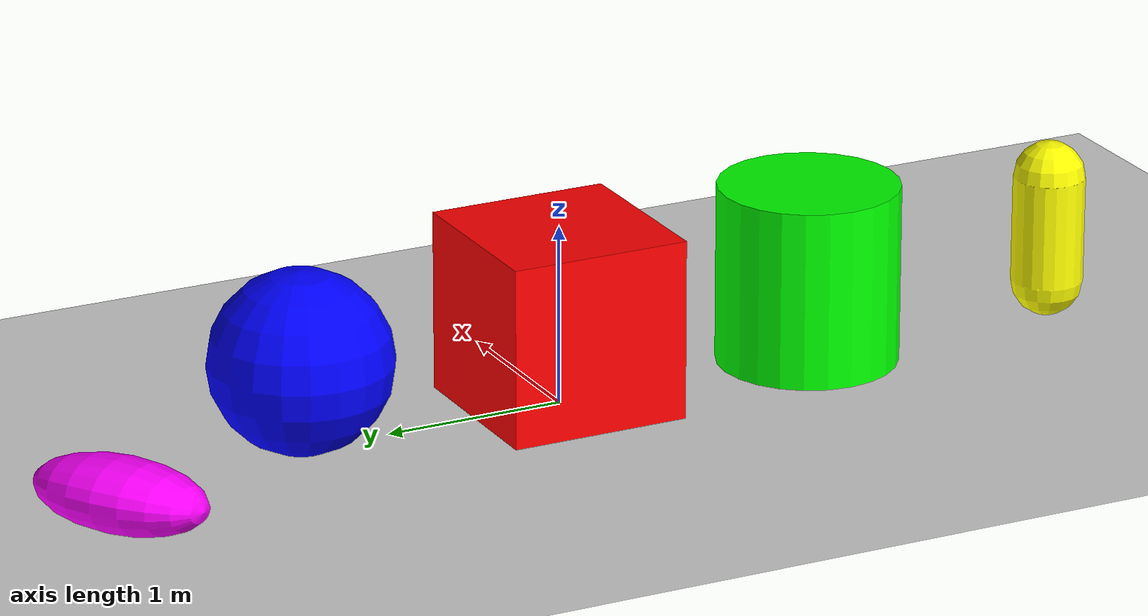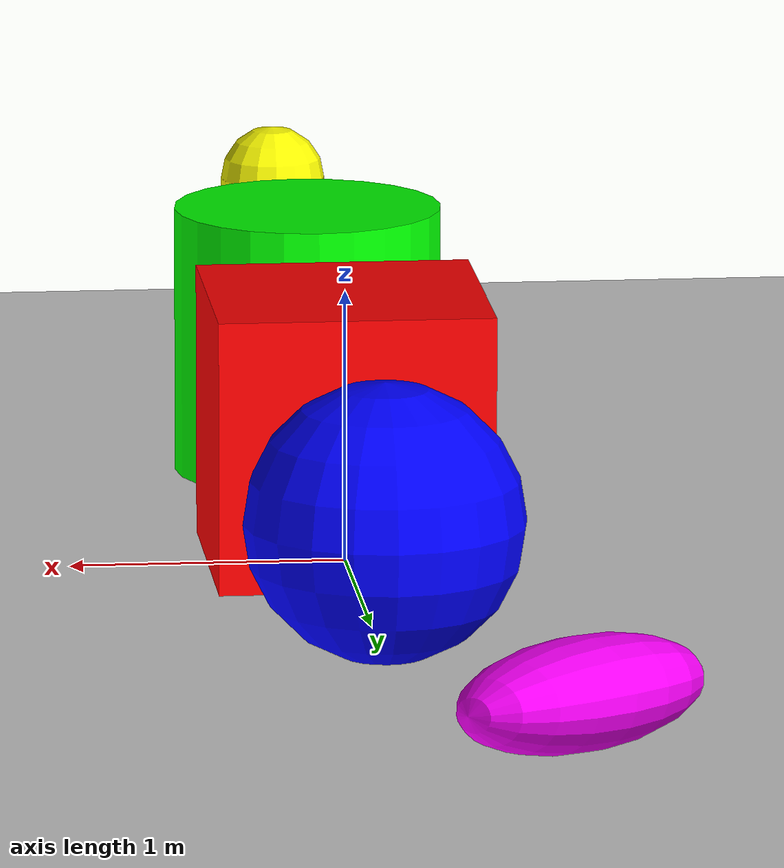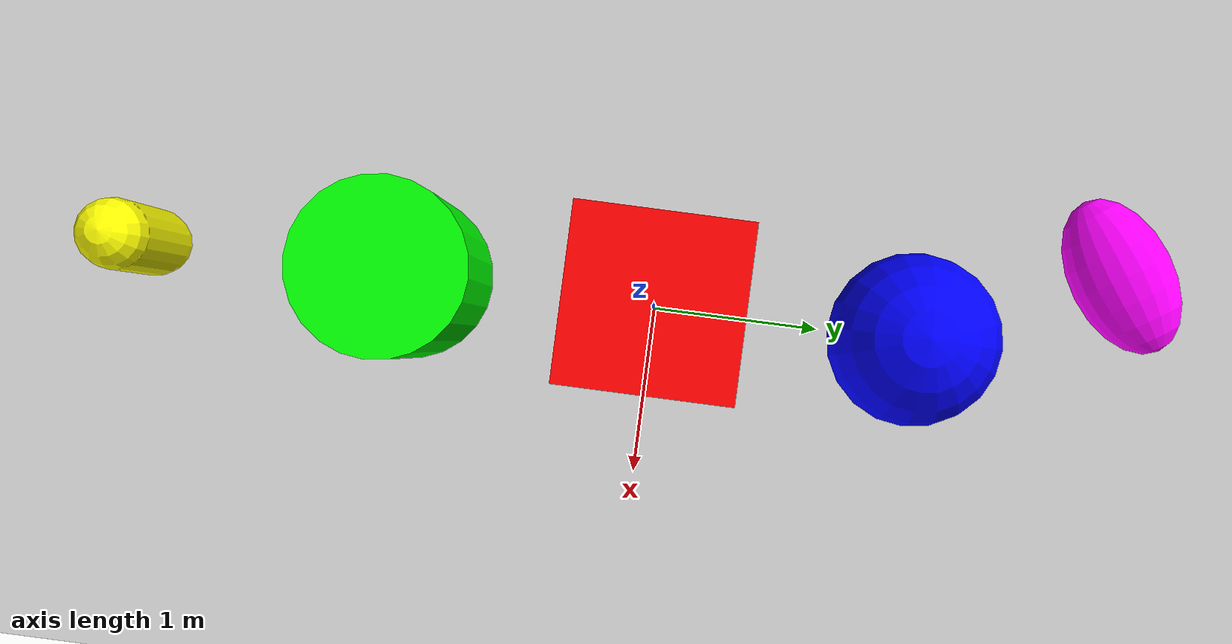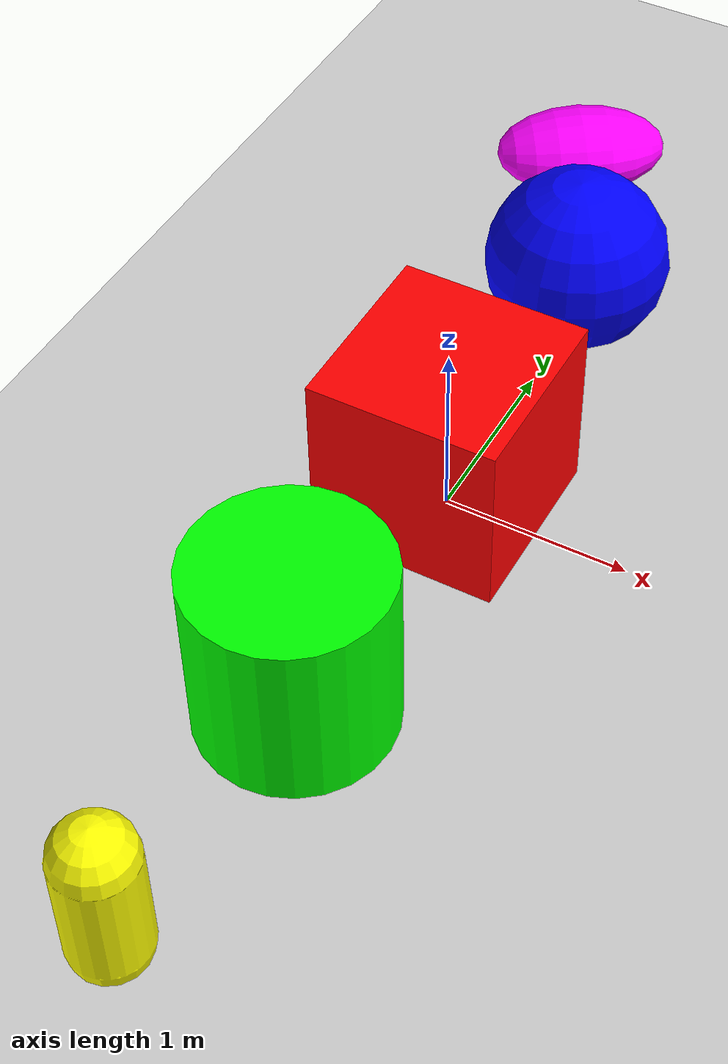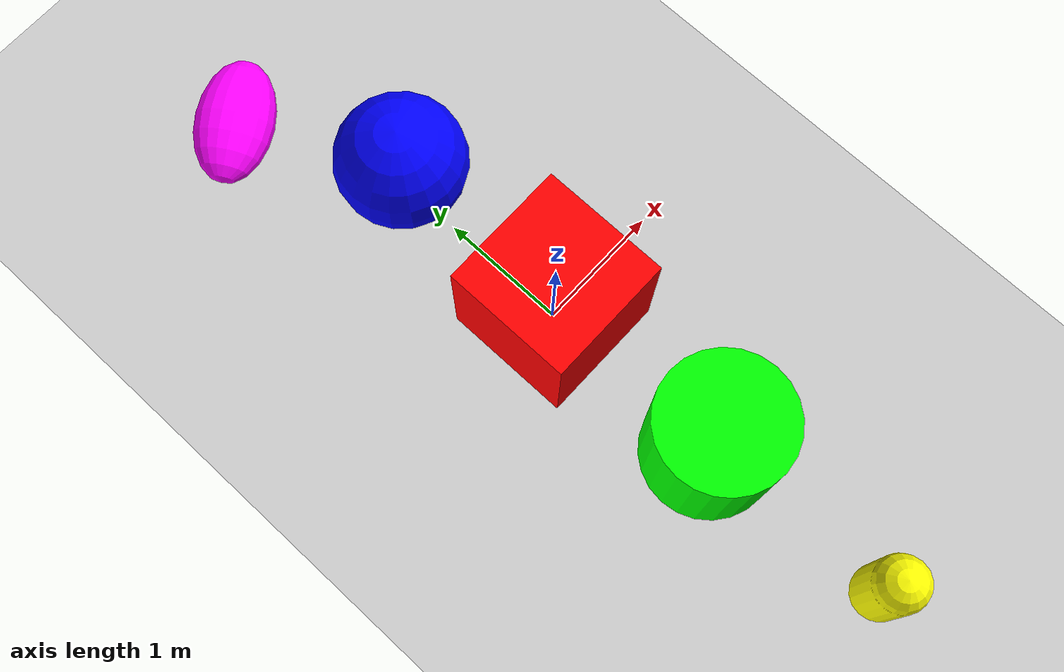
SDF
<sdf version='1.10'>
  <world name='shapes'>
    <scene>
      <ambient>1 1 1 1</ambient>
      <background>0.800000012 0.800000012 0.800000012 1</background>
      <shadows>true</shadows>
    </scene>
    <gravity>0 0 -9.8000000000000007</gravity>
    <magnetic_field>5.5644999999999998e-06 2.2875799999999999e-05 -4.2388400000000002e-05</magnetic_field>
    <atmosphere type='adiabatic'/>
    <physics type='ode'>
      <max_step_size>0.001</max_step_size>
      <real_time_factor>1</real_time_factor>
      <real_time_update_rate>1000</real_time_update_rate>
    </physics>
    <model name='ground_plane'>
      <static>true</static>
      <link name='link'>
        <collision name='collision'>
          <geometry>
            <plane>
              <normal>0 0 1</normal>
              <size>100 100</size>
            </plane>
          </geometry>
          <surface>
            <friction>
              <ode/>
            </friction>
            <bounce/>
            <contact/>
          </surface>
        </collision>
        <visual name='visual'>
          <geometry>
            <plane>
              <normal>0 0 1</normal>
              <size>100 100</size>
            </plane>
          </geometry>
          <material>
            <ambient>0.800000012 0.800000012 0.800000012 1</ambient>
            <diffuse>0.800000012 0.800000012 0.800000012 1</diffuse>
            <specular>0.800000012 0.800000012 0.800000012 1</specular>
          </material>
        </visual>
        <pose>0 0 0 0 0 0</pose>
        <inertial>
          <pose>0 0 0 0 0 0</pose>
          <mass>1</mass>
          <inertia>
            <ixx>1</ixx>
            <ixy>0</ixy>
            <ixz>0</ixz>
            <iyy>1</iyy>
            <iyz>0</iyz>
            <izz>1</izz>
          </inertia>
        </inertial>
        <enable_wind>false</enable_wind>
      </link>
      <pose>0 0 0 0 0 0</pose>
      <self_collide>false</self_collide>
    </model>
    <model name='box'>
      <pose>-8.9277939523812131e-22 -7.9047571251935682e-22 0.49999999990199806 6.2287739151293738e-22 9.3279666454713669e-22 -3.6315533669320137e-22</pose>
      <link name='box_link'>
        <inertial>
          <inertia>
            <ixx>0.16666</ixx>
            <ixy>0</ixy>
            <ixz>0</ixz>
            <iyy>0.16666</iyy>
            <iyz>0</iyz>
            <izz>0.16666</izz>
          </inertia>
          <mass>1</mass>
          <pose>0 0 0 0 0 0</pose>
        </inertial>
        <collision name='box_collision'>
          <geometry>
            <box>
              <size>1 1 1</size>
            </box>
          </geometry>
          <surface>
            <friction>
              <ode/>
            </friction>
            <bounce/>
            <contact/>
          </surface>
        </collision>
        <visual name='box_visual'>
          <geometry>
            <box>
              <size>1 1 1</size>
            </box>
          </geometry>
          <material>
            <ambient>1 0 0 1</ambient>
            <diffuse>1 0 0 1</diffuse>
            <specular>1 0 0 1</specular>
          </material>
        </visual>
        <pose>0 0 0 0 0 0</pose>
        <enable_wind>false</enable_wind>
      </link>
      <static>false</static>
      <self_collide>false</self_collide>
    </model>
    <model name='cylinder'>
      <pose>1.1906514689974719e-19 -1.5 0.49999942638036005 -2.0687241871693323e-19 1.508914796687197e-19 2.5459170572970044e-20</pose>
      <link name='cylinder_link'>
        <inertial>
          <inertia>
            <ixx>0.14580000000000001</ixx>
            <ixy>0</ixy>
            <ixz>0</ixz>
            <iyy>0.14580000000000001</iyy>
            <iyz>0</iyz>
            <izz>0.125</izz>
          </inertia>
          <mass>1</mass>
          <pose>0 0 0 0 0 0</pose>
        </inertial>
        <collision name='cylinder_collision'>
          <geometry>
            <cylinder>
              <radius>0.5</radius>
              <length>1</length>
            </cylinder>
          </geometry>
          <surface>
            <friction>
              <ode/>
            </friction>
            <bounce/>
            <contact/>
          </surface>
        </collision>
        <visual name='cylinder_visual'>
          <geometry>
            <cylinder>
              <radius>0.5</radius>
              <length>1</length>
            </cylinder>
          </geometry>
          <material>
            <ambient>0 1 0 1</ambient>
            <diffuse>0 1 0 1</diffuse>
            <specular>0 1 0 1</specular>
          </material>
        </visual>
        <pose>0 0 0 0 0 0</pose>
        <enable_wind>false</enable_wind>
      </link>
      <static>false</static>
      <self_collide>false</self_collide>
    </model>
    <model name='sphere'>
      <pose>0 1.5 0.499999999902001 0 0 0</pose>
      <link name='sphere_link'>
        <inertial>
          <inertia>
            <ixx>0.10000000000000001</ixx>
            <ixy>0</ixy>
            <ixz>0</ixz>
            <iyy>0.10000000000000001</iyy>
            <iyz>0</iyz>
            <izz>0.10000000000000001</izz>
          </inertia>
          <mass>1</mass>
          <pose>0 0 0 0 0 0</pose>
        </inertial>
        <collision name='sphere_collision'>
          <geometry>
            <sphere>
              <radius>0.5</radius>
            </sphere>
          </geometry>
          <surface>
            <friction>
              <ode/>
            </friction>
            <bounce/>
            <contact/>
          </surface>
        </collision>
        <visual name='sphere_visual'>
          <geometry>
            <sphere>
              <radius>0.5</radius>
            </sphere>
          </geometry>
          <material>
            <ambient>0 0 1 1</ambient>
            <diffuse>0 0 1 1</diffuse>
            <specular>0 0 1 1</specular>
          </material>
        </visual>
        <pose>0 0 0 0 0 0</pose>
        <enable_wind>false</enable_wind>
      </link>
      <static>false</static>
      <self_collide>false</self_collide>
    </model>
    <model name='capsule'>
      <pose>0 -3 0.499999999902001 0 0 0</pose>
      <link name='capsule_link'>
        <inertial>
          <inertia>
            <ixx>0.074153999999999998</ixx>
            <ixy>0</ixy>
            <ixz>0</ixz>
            <iyy>0.074153999999999998</iyy>
            <iyz>0</iyz>
            <izz>0.018769000000000001</izz>
          </inertia>
          <mass>1</mass>
          <pose>0 0 0 0 0 0</pose>
        </inertial>
        <collision name='capsule_collision'>
          <geometry>
            <capsule>
              <radius>0.20000000000000001</radius>
              <length>0.59999999999999998</length>
            </capsule>
          </geometry>
          <surface>
            <friction>
              <ode/>
            </friction>
            <bounce/>
            <contact/>
          </surface>
        </collision>
        <visual name='capsule_visual'>
          <geometry>
            <capsule>
              <radius>0.20000000000000001</radius>
              <length>0.59999999999999998</length>
            </capsule>
          </geometry>
          <material>
            <ambient>1 1 0 1</ambient>
            <diffuse>1 1 0 1</diffuse>
            <specular>1 1 0 1</specular>
          </material>
        </visual>
        <pose>0 0 0 0 0 0</pose>
        <enable_wind>false</enable_wind>
      </link>
      <static>false</static>
      <self_collide>false</self_collide>
    </model>
    <model name='ellipsoid'>
      <pose>-0.54647486150870839 2.7517732160257822 0.18666849230812096 1.5707963263497189 -1.3774896329052266 -0.9751490142206648</pose>
      <link name='ellipsoid_link'>
        <inertial>
          <inertia>
            <ixx>0.068000000000000005</ixx>
            <ixy>0</ixy>
            <ixz>0</ixz>
            <iyy>0.058000000000000003</iyy>
            <iyz>0</iyz>
            <izz>0.025999999999999999</izz>
          </inertia>
          <mass>1</mass>
          <pose>0 0 0 0 0 0</pose>
        </inertial>
        <collision name='ellipsoid_collision'>
          <geometry>
            <ellipsoid>
              <radii>0.20000000000000001 0.29999999999999999 0.5</radii>
            </ellipsoid>
          </geometry>
          <surface>
            <friction>
              <ode/>
            </friction>
            <bounce/>
            <contact/>
          </surface>
        </collision>
        <visual name='ellipsoid_visual'>
          <geometry>
            <ellipsoid>
              <radii>0.20000000000000001 0.29999999999999999 0.5</radii>
            </ellipsoid>
          </geometry>
          <material>
            <ambient>1 0 1 1</ambient>
            <diffuse>1 0 1 1</diffuse>
            <specular>1 0 1 1</specular>
          </material>
        </visual>
        <pose>0 0 0 0 0 0</pose>
        <enable_wind>false</enable_wind>
      </link>
      <static>false</static>
      <self_collide>false</self_collide>
    </model>
    <light name='sun' type='directional'>
      <pose>0 0 10 0 0 0</pose>
      <cast_shadows>true</cast_shadows>
      <intensity>1</intensity>
      <direction>-0.5 0.10000000000000001 -0.90000000000000002</direction>
      <diffuse>0.800000012 0.800000012 0.800000012 1</diffuse>
      <specular>0.200000003 0.200000003 0.200000003 1</specular>
      <attenuation>
        <range>1000</range>
        <linear>0.0099999997764825821</linear>
        <constant>0.89999997615814209</constant>
        <quadratic>0.0010000000474974513</quadratic>
      </attenuation>
      <spot>
        <inner_angle>0</inner_angle>
        <outer_angle>0</outer_angle>
        <falloff>0</falloff>
      </spot>
    </light>
  </world>
</sdf>
